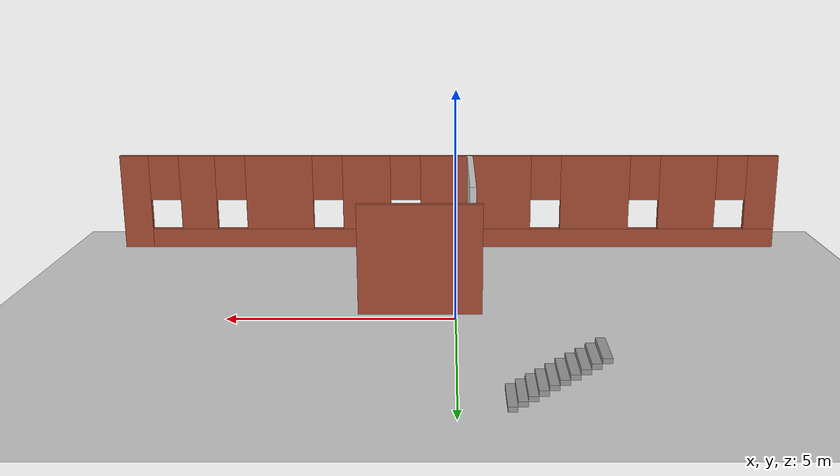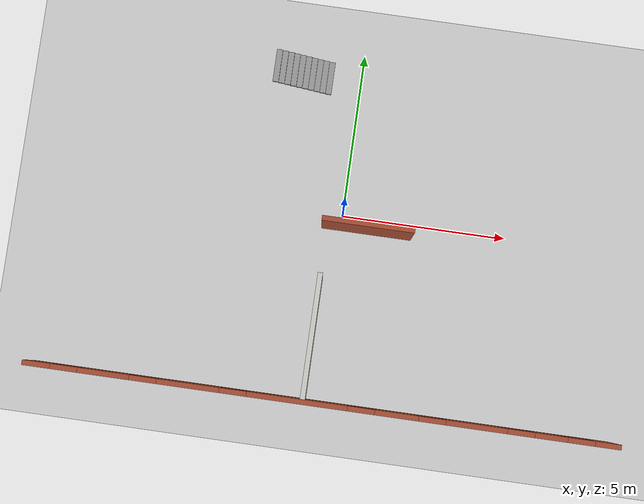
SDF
<sdf version="1.6">
 <world name="default">
  <model name="ground_plane">
   <static>1</static>
   <link name="link">
    <collision name="collision">
     <geometry><plane><normal>0 0 1</normal><size>100 100</size></plane></geometry>
     <surface><friction><ode><mu>100</mu><mu2>50</mu2></ode></friction></surface>
    </collision>
    <visual name="visual">
     <cast_shadows>0</cast_shadows>
     <geometry><plane><normal>0 0 1</normal><size>100 100</size></plane></geometry>
     <material>
      <script><uri>file://media/materials/scripts/gazebo.material</uri><name>Gazebo/Grey</name></script>
     </material>
    </visual>
   </link>
  </model>
  <model name="Building">
   <pose>-0.293126 -0.203944 0 0 -0 0</pose>
   <link name="Stairs_2">
    <visual name="Stairs_2_Visual_0">
     <pose>-0.680228 4.38796 0.05 0 0 -1.5708</pose>
     <geometry><box><size>1 0.18 0.1</size></box></geometry>
     <material>
      <script><uri>file://media/materials/scripts/gazebo.material</uri><name>Gazebo/Grey</name></script>
      <ambient>1 1 1 1</ambient>
     </material>
     <meta><layer>0</layer></meta>
    </visual>
    <collision name="Stairs_2_Collision_0">
     <geometry><box><size>1 0.18 0.1</size></box></geometry>
     <pose>-0.680228 4.38796 0.05 0 0 -1.5708</pose>
    </collision>
    <visual name="Stairs_2_Visual_1">
     <pose>-0.860228 4.38796 0.15 0 0 -1.5708</pose>
     <geometry><box><size>1 0.18 0.1</size></box></geometry>
     <material>
      <script><uri>file://media/materials/scripts/gazebo.material</uri><name>Gazebo/Grey</name></script>
      <ambient>1 1 1 1</ambient>
     </material>
     <meta><layer>0</layer></meta>
    </visual>
    <collision name="Stairs_2_Collision_1">
     <geometry><box><size>1 0.18 0.1</size></box></geometry>
     <pose>-0.860228 4.38796 0.15 0 0 -1.5708</pose>
    </collision>
    <visual name="Stairs_2_Visual_2">
     <pose>-1.04023 4.38796 0.25 0 0 -1.5708</pose>
     <geometry><box><size>1 0.18 0.1</size></box></geometry>
     <material>
      <script><uri>file://media/materials/scripts/gazebo.material</uri><name>Gazebo/Grey</name></script>
      <ambient>1 1 1 1</ambient>
     </material>
     <meta><layer>0</layer></meta>
    </visual>
    <collision name="Stairs_2_Collision_2">
     <geometry><box><size>1 0.18 0.1</size></box></geometry>
     <pose>-1.04023 4.38796 0.25 0 0 -1.5708</pose>
    </collision>
    <visual name="Stairs_2_Visual_3">
     <pose>-1.22023 4.38796 0.35 0 0 -1.5708</pose>
     <geometry><box><size>1 0.18 0.1</size></box></geometry>
     <material>
      <script><uri>file://media/materials/scripts/gazebo.material</uri><name>Gazebo/Grey</name></script>
      <ambient>1 1 1 1</ambient>
     </material>
     <meta><layer>0</layer></meta>
    </visual>
    <collision name="Stairs_2_Collision_3">
     <geometry><box><size>1 0.18 0.1</size></box></geometry>
     <pose>-1.22023 4.38796 0.35 0 0 -1.5708</pose>
    </collision>
    <visual name="Stairs_2_Visual_4">
     <pose>-1.40023 4.38796 0.45 0 0 -1.5708</pose>
     <geometry><box><size>1 0.18 0.1</size></box></geometry>
     <material>
      <script><uri>file://media/materials/scripts/gazebo.material</uri><name>Gazebo/Grey</name></script>
      <ambient>1 1 1 1</ambient>
     </material>
     <meta><layer>0</layer></meta>
    </visual>
    <collision name="Stairs_2_Collision_4">
     <geometry><box><size>1 0.18 0.1</size></box></geometry>
     <pose>-1.40023 4.38796 0.45 0 0 -1.5708</pose>
    </collision>
    <visual name="Stairs_2_Visual_5">
     <pose>-1.58023 4.38796 0.55 0 0 -1.5708</pose>
     <geometry><box><size>1 0.18 0.1</size></box></geometry>
     <material>
      <script><uri>file://media/materials/scripts/gazebo.material</uri><name>Gazebo/Grey</name></script>
      <ambient>1 1 1 1</ambient>
     </material>
     <meta><layer>0</layer></meta>
    </visual>
    <collision name="Stairs_2_Collision_5">
     <geometry><box><size>1 0.18 0.1</size></box></geometry>
     <pose>-1.58023 4.38796 0.55 0 0 -1.5708</pose>
    </collision>
    <visual name="Stairs_2_Visual_6">
     <pose>-1.76023 4.38796 0.65 0 0 -1.5708</pose>
     <geometry><box><size>1 0.18 0.1</size></box></geometry>
     <material>
      <script><uri>file://media/materials/scripts/gazebo.material</uri><name>Gazebo/Grey</name></script>
      <ambient>1 1 1 1</ambient>
     </material>
     <meta><layer>0</layer></meta>
    </visual>
    <collision name="Stairs_2_Collision_6">
     <geometry><box><size>1 0.18 0.1</size></box></geometry>
     <pose>-1.76023 4.38796 0.65 0 0 -1.5708</pose>
    </collision>
    <visual name="Stairs_2_Visual_7">
     <pose>-1.94023 4.38796 0.75 0 0 -1.5708</pose>
     <geometry><box><size>1 0.18 0.1</size></box></geometry>
     <material>
      <script><uri>file://media/materials/scripts/gazebo.material</uri><name>Gazebo/Grey</name></script>
      <ambient>1 1 1 1</ambient>
     </material>
     <meta><layer>0</layer></meta>
    </visual>
    <collision name="Stairs_2_Collision_7">
     <geometry><box><size>1 0.18 0.1</size></box></geometry>
     <pose>-1.94023 4.38796 0.75 0 0 -1.5708</pose>
    </collision>
    <visual name="Stairs_2_Visual_8">
     <pose>-2.12023 4.38796 0.85 0 0 -1.5708</pose>
     <geometry><box><size>1 0.18 0.1</size></box></geometry>
     <material>
      <script><uri>file://media/materials/scripts/gazebo.material</uri><name>Gazebo/Grey</name></script>
      <ambient>1 1 1 1</ambient>
     </material>
     <meta><layer>0</layer></meta>
    </visual>
    <collision name="Stairs_2_Collision_8">
     <geometry><box><size>1 0.18 0.1</size></box></geometry>
     <pose>-2.12023 4.38796 0.85 0 0 -1.5708</pose>
    </collision>
    <visual name="Stairs_2_Visual_9">
     <pose>-2.30023 4.38796 0.95 0 0 -1.5708</pose>
     <geometry><box><size>1 0.18 0.1</size></box></geometry>
     <material>
      <script><uri>file://media/materials/scripts/gazebo.material</uri><name>Gazebo/Grey</name></script>
      <ambient>1 1 1 1</ambient>
     </material>
     <meta><layer>0</layer></meta>
    </visual>
    <collision name="Stairs_2_Collision_9">
     <geometry><box><size>1 0.18 0.1</size></box></geometry>
     <pose>-2.30023 4.38796 0.95 0 0 -1.5708</pose>
    </collision>
   </link>
   <link name="Wall_15">
    <collision name="Wall_15_Collision">
     <geometry><box><size>3.75 0.15 2.5</size></box></geometry>
     <pose>0 0 1.25 0 -0 0</pose>
    </collision>
    <visual name="Wall_15_Visual">
     <pose>0 0 1.25 0 -0 0</pose>
     <geometry><box><size>3.75 0.15 2.5</size></box></geometry>
     <material>
      <script><uri>file://media/materials/scripts/gazebo.material</uri><name>Gazebo/CeilingTiled</name></script>
      <ambient>0.921569 0.807843 0.615686 1</ambient>
     </material>
     <meta><layer>0</layer></meta>
    </visual>
    <pose>-0.120167 -3.64669 0 0 0 -1.5708</pose>
   </link>
   <link name="Wall_3">
    <pose>0.434915 -5.56135 0 0 -0 3.14159</pose>
    <visual name="Wall_3_Visual_0">
     <pose>-8.37149 0 1.25 0 -0 0</pose>
     <geometry><box><size>0.757013 0.15 2.5</size></box></geometry>
     <material>
      <script><uri>file://media/materials/scripts/gazebo.material</uri><name>Gazebo/Bricks</name></script>
      <ambient>1 1 1 1</ambient>
     </material>
     <meta><layer>0</layer></meta>
    </visual>
    <collision name="Wall_3_Collision_0">
     <geometry><box><size>0.757013 0.15 2.5</size></box></geometry>
     <pose>-8.37149 0 1.25 0 -0 0</pose>
    </collision>
    <visual name="Wall_3_Visual_1">
     <pose>0.378507 0 0.25 0 -0 0</pose>
     <geometry><box><size>16.743 0.15 0.5</size></box></geometry>
     <material>
      <script><uri>file://media/materials/scripts/gazebo.material</uri><name>Gazebo/Bricks</name></script>
      <ambient>1 1 1 1</ambient>
     </material>
     <meta><layer>0</layer></meta>
    </visual>
    <collision name="Wall_3_Collision_1">
     <geometry><box><size>16.743 0.15 0.5</size></box></geometry>
     <pose>0.378507 0 0.25 0 -0 0</pose>
    </collision>
    <visual name="Wall_3_Visual_2">
     <pose>-6.71402 0 1.5 0 -0 0</pose>
     <geometry><box><size>0.957926 0.15 2</size></box></geometry>
     <material>
      <script><uri>file://media/materials/scripts/gazebo.material</uri><name>Gazebo/Bricks</name></script>
      <ambient>1 1 1 1</ambient>
     </material>
     <meta><layer>0</layer></meta>
    </visual>
    <collision name="Wall_3_Collision_2">
     <geometry><box><size>0.957926 0.15 2</size></box></geometry>
     <pose>-6.71402 0 1.5 0 -0 0</pose>
    </collision>
    <visual name="Wall_3_Visual_3">
     <pose>-4.53975 0 1.5 0 -0 0</pose>
     <geometry><box><size>1.79063 0.15 2</size></box></geometry>
     <material>
      <script><uri>file://media/materials/scripts/gazebo.material</uri><name>Gazebo/Bricks</name></script>
      <ambient>1 1 1 1</ambient>
     </material>
     <meta><layer>0</layer></meta>
    </visual>
    <collision name="Wall_3_Collision_3">
     <geometry><box><size>1.79063 0.15 2</size></box></geometry>
     <pose>-4.53975 0 1.5 0 -0 0</pose>
    </collision>
    <visual name="Wall_3_Visual_4">
     <pose>-2.20356 0 1.5 0 -0 0</pose>
     <geometry><box><size>1.28175 0.15 2</size></box></geometry>
     <material>
      <script><uri>file://media/materials/scripts/gazebo.material</uri><name>Gazebo/Bricks</name></script>
      <ambient>1 1 1 1</ambient>
     </material>
     <meta><layer>0</layer></meta>
    </visual>
    <collision name="Wall_3_Collision_4">
     <geometry><box><size>1.28175 0.15 2</size></box></geometry>
     <pose>-2.20356 0 1.5 0 -0 0</pose>
    </collision>
    <visual name="Wall_3_Visual_5">
     <pose>0.710901 0 1.5 0 -0 0</pose>
     <geometry><box><size>2.94716 0.15 2</size></box></geometry>
     <material>
      <script><uri>file://media/materials/scripts/gazebo.material</uri><name>Gazebo/Bricks</name></script>
      <ambient>1 1 1 1</ambient>
     </material>
     <meta><layer>0</layer></meta>
    </visual>
    <collision name="Wall_3_Collision_5">
     <geometry><box><size>2.94716 0.15 2</size></box></geometry>
     <pose>0.710901 0 1.5 0 -0 0</pose>
    </collision>
    <visual name="Wall_3_Visual_6">
     <pose>3.90293 0 1.5 0 -0 0</pose>
     <geometry><box><size>1.83689 0.15 2</size></box></geometry>
     <material>
      <script><uri>file://media/materials/scripts/gazebo.material</uri><name>Gazebo/Bricks</name></script>
      <ambient>1 1 1 1</ambient>
     </material>
     <meta><layer>0</layer></meta>
    </visual>
    <collision name="Wall_3_Collision_6">
     <geometry><box><size>1.83689 0.15 2</size></box></geometry>
     <pose>3.90293 0 1.5 0 -0 0</pose>
    </collision>
    <visual name="Wall_3_Visual_7">
     <pose>6.3779 0 1.5 0 -0 0</pose>
     <geometry><box><size>1.51306 0.15 2</size></box></geometry>
     <material>
      <script><uri>file://media/materials/scripts/gazebo.material</uri><name>Gazebo/Bricks</name></script>
      <ambient>1 1 1 1</ambient>
     </material>
     <meta><layer>0</layer></meta>
    </visual>
    <collision name="Wall_3_Collision_7">
     <geometry><box><size>1.51306 0.15 2</size></box></geometry>
     <pose>6.3779 0 1.5 0 -0 0</pose>
    </collision>
    <visual name="Wall_3_Visual_8">
     <pose>8.34221 0 1.5 0 -0 0</pose>
     <geometry><box><size>0.815569 0.15 2</size></box></geometry>
     <material>
      <script><uri>file://media/materials/scripts/gazebo.material</uri><name>Gazebo/Bricks</name></script>
      <ambient>1 1 1 1</ambient>
     </material>
     <meta><layer>0</layer></meta>
    </visual>
    <collision name="Wall_3_Collision_8">
     <geometry><box><size>0.815569 0.15 2</size></box></geometry>
     <pose>8.34221 0 1.5 0 -0 0</pose>
    </collision>
    <visual name="Wall_3_Visual_9">
     <pose>-7.59299 0 1.9 0 -0 0</pose>
     <geometry><box><size>0.8 0.15 1.2</size></box></geometry>
     <material>
      <script><uri>file://media/materials/scripts/gazebo.material</uri><name>Gazebo/Bricks</name></script>
      <ambient>1 1 1 1</ambient>
     </material>
     <meta><layer>0</layer></meta>
    </visual>
    <collision name="Wall_3_Collision_9">
     <geometry><box><size>0.8 0.15 1.2</size></box></geometry>
     <pose>-7.59299 0 1.9 0 -0 0</pose>
    </collision>
    <visual name="Wall_3_Visual_10">
     <pose>-5.83506 0 1.9 0 -0 0</pose>
     <geometry><box><size>0.8 0.15 1.2</size></box></geometry>
     <material>
      <script><uri>file://media/materials/scripts/gazebo.material</uri><name>Gazebo/Bricks</name></script>
      <ambient>1 1 1 1</ambient>
     </material>
     <meta><layer>0</layer></meta>
    </visual>
    <collision name="Wall_3_Collision_10">
     <geometry><box><size>0.8 0.15 1.2</size></box></geometry>
     <pose>-5.83506 0 1.9 0 -0 0</pose>
    </collision>
    <visual name="Wall_3_Visual_11">
     <pose>-3.24443 0 1.9 0 -0 0</pose>
     <geometry><box><size>0.8 0.15 1.2</size></box></geometry>
     <material>
      <script><uri>file://media/materials/scripts/gazebo.material</uri><name>Gazebo/Bricks</name></script>
      <ambient>1 1 1 1</ambient>
     </material>
     <meta><layer>0</layer></meta>
    </visual>
    <collision name="Wall_3_Collision_11">
     <geometry><box><size>0.8 0.15 1.2</size></box></geometry>
     <pose>-3.24443 0 1.9 0 -0 0</pose>
    </collision>
    <visual name="Wall_3_Visual_12">
     <pose>-1.16268 0 1.9 0 -0 0</pose>
     <geometry><box><size>0.8 0.15 1.2</size></box></geometry>
     <material>
      <script><uri>file://media/materials/scripts/gazebo.material</uri><name>Gazebo/Bricks</name></script>
      <ambient>1 1 1 1</ambient>
     </material>
     <meta><layer>0</layer></meta>
    </visual>
    <collision name="Wall_3_Collision_12">
     <geometry><box><size>0.8 0.15 1.2</size></box></geometry>
     <pose>-1.16268 0 1.9 0 -0 0</pose>
    </collision>
    <visual name="Wall_3_Visual_13">
     <pose>2.58448 0 1.9 0 -0 0</pose>
     <geometry><box><size>0.8 0.15 1.2</size></box></geometry>
     <material>
      <script><uri>file://media/materials/scripts/gazebo.material</uri><name>Gazebo/Bricks</name></script>
      <ambient>1 1 1 1</ambient>
     </material>
     <meta><layer>0</layer></meta>
    </visual>
    <collision name="Wall_3_Collision_13">
     <geometry><box><size>0.8 0.15 1.2</size></box></geometry>
     <pose>2.58448 0 1.9 0 -0 0</pose>
    </collision>
    <visual name="Wall_3_Visual_14">
     <pose>5.22137 0 1.9 0 -0 0</pose>
     <geometry><box><size>0.8 0.15 1.2</size></box></geometry>
     <material>
      <script><uri>file://media/materials/scripts/gazebo.material</uri><name>Gazebo/Bricks</name></script>
      <ambient>1 1 1 1</ambient>
     </material>
     <meta><layer>0</layer></meta>
    </visual>
    <collision name="Wall_3_Collision_14">
     <geometry><box><size>0.8 0.15 1.2</size></box></geometry>
     <pose>5.22137 0 1.9 0 -0 0</pose>
    </collision>
    <visual name="Wall_3_Visual_15">
     <pose>7.53443 0 1.9 0 -0 0</pose>
     <geometry><box><size>0.8 0.15 1.2</size></box></geometry>
     <material>
      <script><uri>file://media/materials/scripts/gazebo.material</uri><name>Gazebo/Bricks</name></script>
      <ambient>1 1 1 1</ambient>
     </material>
     <meta><layer>0</layer></meta>
    </visual>
    <collision name="Wall_3_Collision_15">
     <geometry><box><size>0.8 0.15 1.2</size></box></geometry>
     <pose>7.53443 0 1.9 0 -0 0</pose>
    </collision>
   </link>
   <link name="Wall_66">
    <collision name="Wall_66_Collision">
     <geometry><box><size>2.75 0.15 2.5</size></box></geometry>
     <pose>0 0 1.25 0 -0 0</pose>
    </collision>
    <visual name="Wall_66_Visual">
     <pose>0 0 1.25 0 -0 0</pose>
     <geometry><box><size>2.75 0.15 2.5</size></box></geometry>
     <material>
      <script><uri>file://media/materials/scripts/gazebo.material</uri><name>Gazebo/Bricks</name></script>
      <ambient>1 1 1 1</ambient>
     </material>
     <meta><layer>0</layer></meta>
    </visual>
    <pose>1.07399 -0.175669 0 0 -0 0</pose>
   </link>
   <static>1</static>
  </model>
 </world>
</sdf>
